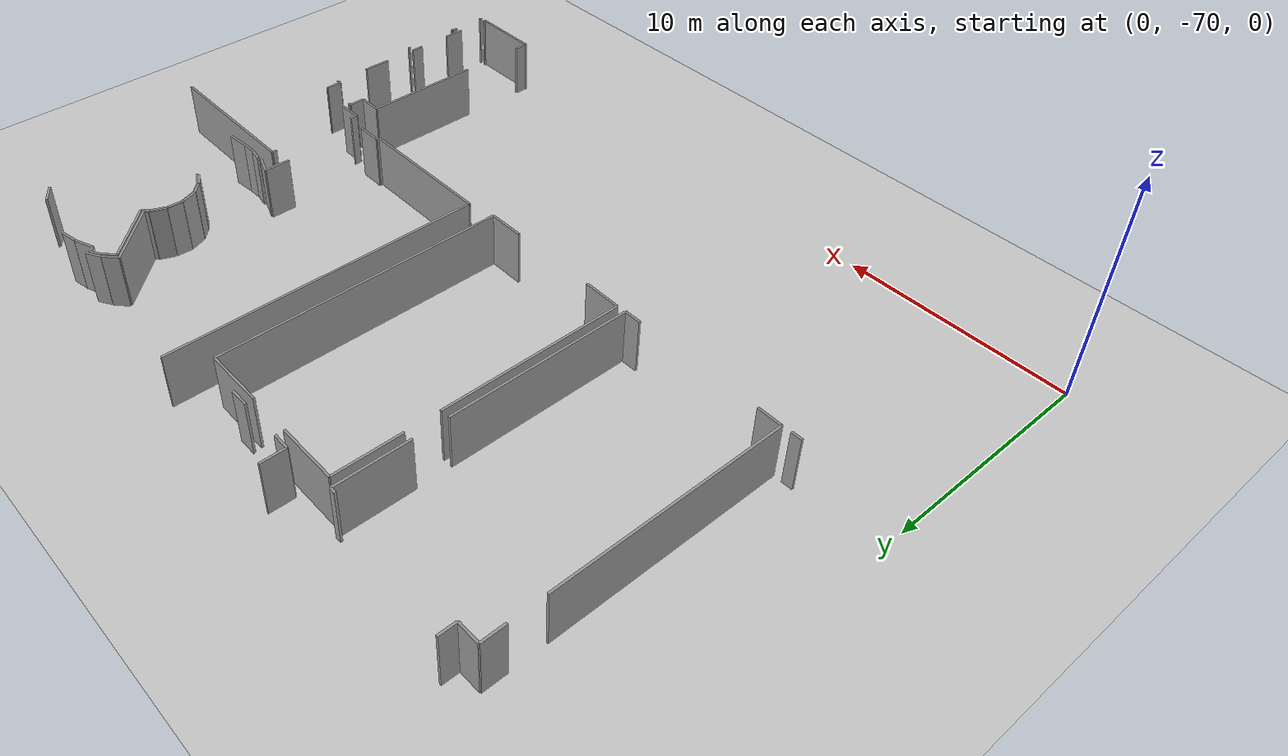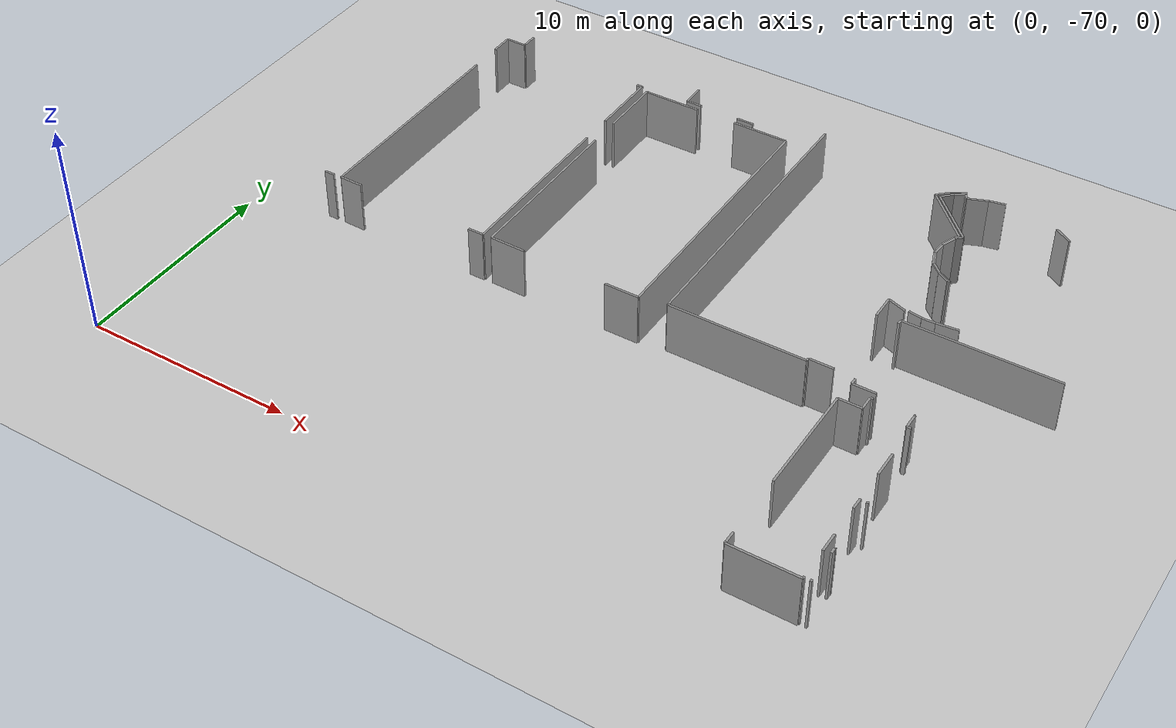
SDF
<sdf version="1.6">
 <world name="default">
  <model name="ground_plane">
   <static>1</static>
   <link name="link">
    <collision name="collision">
     <geometry><plane><normal>0 0 1</normal><size>100 100</size></plane></geometry>
     <surface><friction><ode><mu>100</mu><mu2>50</mu2></ode></friction></surface>
    </collision>
    <visual name="visual">
     <cast_shadows>0</cast_shadows>
     <geometry><plane><normal>0 0 1</normal><size>100 100</size></plane></geometry>
     <material>
      <script><uri>file://media/materials/scripts/gazebo.material</uri><name>Gazebo/Grey</name></script>
     </material>
    </visual>
   </link>
  </model>
  <model name="0510035519_A_40_1_102">
   <static>1</static>
   <link name="Wall_614">
    <collision name="Wall_614_Collision">
     <geometry><box><size>0.830855254797 0.1 2.5</size></box></geometry>
     <pose>0.415427627399 0 1.25 0 0 0</pose>
    </collision>
    <visual name="Wall_614_Visual">
     <pose>0.415427627399 0 1.25 0 0 0</pose>
     <geometry><box><size>0.830855254797 0.1 2.5</size></box></geometry>
     <material>
      <script><uri>file://media/materials/scripts/gazebo.material</uri><name>Gazebo/Grey</name></script>
      <ambient>1 1 1 1</ambient>
     </material>
    </visual>
    <pose>134.57084763 -114.151988817 0 0 0 3.14159265359</pose>
   </link>
   <link name="Wall_615">
    <collision name="Wall_615_Collision">
     <geometry><box><size>0.73935697039 0.1 2.5</size></box></geometry>
     <pose>0.369678485195 0 1.25 0 0 0</pose>
    </collision>
    <visual name="Wall_615_Visual">
     <pose>0.369678485195 0 1.25 0 0 0</pose>
     <geometry><box><size>0.73935697039 0.1 2.5</size></box></geometry>
     <material>
      <script><uri>file://media/materials/scripts/gazebo.material</uri><name>Gazebo/Grey</name></script>
      <ambient>1 1 1 1</ambient>
     </material>
    </visual>
    <pose>131.845469564 -114.151988817 0 0 0 3.14159265359</pose>
   </link>
   <link name="Wall_616">
    <collision name="Wall_616_Collision">
     <geometry><box><size>1.09797941289 0.1 2.5</size></box></geometry>
     <pose>0.548989706443 0 1.25 0 0 0</pose>
    </collision>
    <visual name="Wall_616_Visual">
     <pose>0.548989706443 0 1.25 0 0 0</pose>
     <geometry><box><size>1.09797941289 0.1 2.5</size></box></geometry>
     <material>
      <script><uri>file://media/materials/scripts/gazebo.material</uri><name>Gazebo/Grey</name></script>
      <ambient>1 1 1 1</ambient>
     </material>
    </visual>
    <pose>131.106112594 -114.151988817 0 0 0 1.57079632679</pose>
   </link>
   <link name="Wall_625">
    <collision name="Wall_625_Collision">
     <geometry><box><size>0.483924259753 0.1 2.5</size></box></geometry>
     <pose>0.241962129877 0 1.25 0 0 0</pose>
    </collision>
    <visual name="Wall_625_Visual">
     <pose>0.241962129877 0 1.25 0 0 0</pose>
     <geometry><box><size>0.483924259753 0.1 2.5</size></box></geometry>
     <material>
      <script><uri>file://media/materials/scripts/gazebo.material</uri><name>Gazebo/Grey</name></script>
      <ambient>1 1 1 1</ambient>
     </material>
    </visual>
    <pose>120.720294828 -127.424323294 0 0 0 3.14159265359</pose>
   </link>
   <link name="Wall_630">
    <collision name="Wall_630_Collision">
     <geometry><box><size>10.5062905071 0.1 2.5</size></box></geometry>
     <pose>5.25314525353 0 1.25 0 0 0</pose>
    </collision>
    <visual name="Wall_630_Visual">
     <pose>5.25314525353 0 1.25 0 0 0</pose>
     <geometry><box><size>10.5062905071 0.1 2.5</size></box></geometry>
     <material>
      <script><uri>file://media/materials/scripts/gazebo.material</uri><name>Gazebo/Grey</name></script>
      <ambient>1 1 1 1</ambient>
     </material>
    </visual>
    <pose>121.110433346 -127.396873809 0 0 0 1.57079632679</pose>
   </link>
   <link name="Wall_631">
    <collision name="Wall_631_Collision">
     <geometry><box><size>1.0552802135 0.1 2.5</size></box></geometry>
     <pose>0.527640106748 0 1.25 0 0 0</pose>
    </collision>
    <visual name="Wall_631_Visual">
     <pose>0.527640106748 0 1.25 0 0 0</pose>
     <geometry><box><size>1.0552802135 0.1 2.5</size></box></geometry>
     <material>
      <script><uri>file://media/materials/scripts/gazebo.material</uri><name>Gazebo/Grey</name></script>
      <ambient>1 1 1 1</ambient>
     </material>
    </visual>
    <pose>121.110433346 -115.306900496 0 0 0 1.57079632679</pose>
   </link>
   <link name="Wall_632">
    <collision name="Wall_632_Collision">
     <geometry><box><size>0.980810776465 0.1 2.5</size></box></geometry>
     <pose>0.490405388232 0 1.25 0 0 0</pose>
    </collision>
    <visual name="Wall_632_Visual">
     <pose>0.490405388232 0 1.25 0 0 0</pose>
     <geometry><box><size>0.980810776465 0.1 2.5</size></box></geometry>
     <material>
      <script><uri>file://media/materials/scripts/gazebo.material</uri><name>Gazebo/Grey</name></script>
      <ambient>1 1 1 1</ambient>
     </material>
    </visual>
    <pose>121.110433346 -114.251620282 0 0 0 0.0</pose>
   </link>
   <link name="Wall_633">
    <collision name="Wall_633_Collision">
     <geometry><box><size>0.772652179438 0.1 2.5</size></box></geometry>
     <pose>0.386326089719 0 1.25 0 0 0</pose>
    </collision>
    <visual name="Wall_633_Visual">
     <pose>0.386326089719 0 1.25 0 0 0</pose>
     <geometry><box><size>0.772652179438 0.1 2.5</size></box></geometry>
     <material>
      <script><uri>file://media/materials/scripts/gazebo.material</uri><name>Gazebo/Grey</name></script>
      <ambient>1 1 1 1</ambient>
     </material>
    </visual>
    <pose>122.091244123 -114.251620282 0 0 0 1.57079632679</pose>
   </link>
   <link name="Wall_637">
    <collision name="Wall_637_Collision">
     <geometry><box><size>0.265853348583 0.1 2.5</size></box></geometry>
     <pose>0.132926674292 0 1.25 0 0 0</pose>
    </collision>
    <visual name="Wall_637_Visual">
     <pose>0.132926674292 0 1.25 0 0 0</pose>
     <geometry><box><size>0.265853348583 0.1 2.5</size></box></geometry>
     <material>
      <script><uri>file://media/materials/scripts/gazebo.material</uri><name>Gazebo/Grey</name></script>
      <ambient>1 1 1 1</ambient>
     </material>
    </visual>
    <pose>128.455712289 -114.268140806 0 0 0 0.0</pose>
   </link>
   <link name="Wall_638">
    <collision name="Wall_638_Collision">
     <geometry><box><size>3.2819926293 0.1 2.5</size></box></geometry>
     <pose>1.64099631465 0 1.25 0 0 0</pose>
    </collision>
    <visual name="Wall_638_Visual">
     <pose>1.64099631465 0 1.25 0 0 0</pose>
     <geometry><box><size>3.2819926293 0.1 2.5</size></box></geometry>
     <material>
      <script><uri>file://media/materials/scripts/gazebo.material</uri><name>Gazebo/Grey</name></script>
      <ambient>1 1 1 1</ambient>
     </material>
    </visual>
    <pose>128.721565637 -114.268140806 0 0 0 -1.57079632679</pose>
   </link>
   <link name="Wall_639">
    <collision name="Wall_639_Collision">
     <geometry><box><size>8.33091879527 0.1 2.5</size></box></geometry>
     <pose>4.16545939764 0 1.25 0 0 0</pose>
    </collision>
    <visual name="Wall_639_Visual">
     <pose>4.16545939764 0 1.25 0 0 0</pose>
     <geometry><box><size>8.33091879527 0.1 2.5</size></box></geometry>
     <material>
      <script><uri>file://media/materials/scripts/gazebo.material</uri><name>Gazebo/Grey</name></script>
      <ambient>1 1 1 1</ambient>
     </material>
    </visual>
    <pose>128.721565637 -119.089337908 0 0 0 -1.57079632679</pose>
   </link>
   <link name="Wall_640">
    <collision name="Wall_640_Collision">
     <geometry><box><size>0.754098360656 0.1 2.5</size></box></geometry>
     <pose>0.377049180328 0 1.25 0 0 0</pose>
    </collision>
    <visual name="Wall_640_Visual">
     <pose>0.377049180328 0 1.25 0 0 0</pose>
     <geometry><box><size>0.754098360656 0.1 2.5</size></box></geometry>
     <material>
      <script><uri>file://media/materials/scripts/gazebo.material</uri><name>Gazebo/Grey</name></script>
      <ambient>1 1 1 1</ambient>
     </material>
    </visual>
    <pose>128.721565637 -127.420256704 0 0 0 3.14159265359</pose>
   </link>
   <link name="Wall_641">
    <collision name="Wall_641_Collision">
     <geometry><box><size>1.09289218511 0.1 2.5</size></box></geometry>
     <pose>0.546446092553 0 1.25 0 0 0</pose>
    </collision>
    <visual name="Wall_641_Visual">
     <pose>0.546446092553 0 1.25 0 0 0</pose>
     <geometry><box><size>1.09289218511 0.1 2.5</size></box></geometry>
     <material>
      <script><uri>file://media/materials/scripts/gazebo.material</uri><name>Gazebo/Grey</name></script>
      <ambient>1 1 1 1</ambient>
     </material>
    </visual>
    <pose>122.203075359 -127.420256704 0 0 0 3.12019559397</pose>
   </link>
   <link name="Wall_642">
    <collision name="Wall_642_Collision">
     <geometry><box><size>14.0320243995 0.1 2.5</size></box></geometry>
     <pose>7.01601219977 0 1.25 0 0 0</pose>
    </collision>
    <visual name="Wall_642_Visual">
     <pose>7.01601219977 0 1.25 0 0 0</pose>
     <geometry><box><size>14.0320243995 0.1 2.5</size></box></geometry>
     <material>
      <script><uri>file://media/materials/scripts/gazebo.material</uri><name>Gazebo/Grey</name></script>
      <ambient>1 1 1 1</ambient>
     </material>
    </visual>
    <pose>137.720930233 -127.102300165 0 0 0 1.57079632679</pose>
   </link>
   <link name="Wall_654">
    <collision name="Wall_654_Collision">
     <geometry><box><size>0.693231792023 0.1 2.5</size></box></geometry>
     <pose>0.346615896012 0 1.25 0 0 0</pose>
    </collision>
    <visual name="Wall_654_Visual">
     <pose>0.346615896012 0 1.25 0 0 0</pose>
     <geometry><box><size>0.693231792023 0.1 2.5</size></box></geometry>
     <material>
      <script><uri>file://media/materials/scripts/gazebo.material</uri><name>Gazebo/Grey</name></script>
      <ambient>1 1 1 1</ambient>
     </material>
    </visual>
    <pose>144.995552167 -113.706951328 0 0 0 -2.60343673094</pose>
   </link>
   <link name="Wall_655">
    <collision name="Wall_655_Collision">
     <geometry><box><size>0.736502163317 0.1 2.5</size></box></geometry>
     <pose>0.368251081659 0 1.25 0 0 0</pose>
    </collision>
    <visual name="Wall_655_Visual">
     <pose>0.368251081659 0 1.25 0 0 0</pose>
     <geometry><box><size>0.736502163317 0.1 2.5</size></box></geometry>
     <material>
      <script><uri>file://media/materials/scripts/gazebo.material</uri><name>Gazebo/Grey</name></script>
      <ambient>1 1 1 1</ambient>
     </material>
    </visual>
    <pose>144.400304994 -114.062269666 0 0 0 -2.38792212103</pose>
   </link>
   <link name="Wall_656">
    <collision name="Wall_656_Collision">
     <geometry><box><size>3.01260734579 0.1 2.5</size></box></geometry>
     <pose>1.50630367289 0 1.25 0 0 0</pose>
    </collision>
    <visual name="Wall_656_Visual">
     <pose>1.50630367289 0 1.25 0 0 0</pose>
     <geometry><box><size>3.01260734579 0.1 2.5</size></box></geometry>
     <material>
      <script><uri>file://media/materials/scripts/gazebo.material</uri><name>Gazebo/Grey</name></script>
      <ambient>1 1 1 1</ambient>
     </material>
    </visual>
    <pose>143.863260897 -114.566272716 0 0 0 -0.800133687664</pose>
   </link>
   <link name="Wall_657">
    <collision name="Wall_657_Collision">
     <geometry><box><size>0.205679644979 0.1 2.5</size></box></geometry>
     <pose>0.102839822489 0 1.25 0 0 0</pose>
    </collision>
    <visual name="Wall_657_Visual">
     <pose>0.102839822489 0 1.25 0 0 0</pose>
     <geometry><box><size>0.205679644979 0.1 2.5</size></box></geometry>
     <material>
      <script><uri>file://media/materials/scripts/gazebo.material</uri><name>Gazebo/Grey</name></script>
      <ambient>1 1 1 1</ambient>
     </material>
    </visual>
    <pose>145.961875715 -116.727665523 0 0 0 -2.38415922616</pose>
   </link>
   <link name="Wall_658">
    <collision name="Wall_658_Collision">
     <geometry><box><size>0.73428780835 0.1 2.5</size></box></geometry>
     <pose>0.367143904175 0 1.25 0 0 0</pose>
    </collision>
    <visual name="Wall_658_Visual">
     <pose>0.367143904175 0 1.25 0 0 0</pose>
     <geometry><box><size>0.73428780835 0.1 2.5</size></box></geometry>
     <material>
      <script><uri>file://media/materials/scripts/gazebo.material</uri><name>Gazebo/Grey</name></script>
      <ambient>1 1 1 1</ambient>
     </material>
    </visual>
    <pose>145.812428517 -116.86897954 0 0 0 -1.9535523466</pose>
   </link>
   <link name="Wall_659">
    <collision name="Wall_659_Collision">
     <geometry><box><size>0.698372898451 0.1 2.5</size></box></geometry>
     <pose>0.349186449226 0 1.25 0 0 0</pose>
    </collision>
    <visual name="Wall_659_Visual">
     <pose>0.349186449226 0 1.25 0 0 0</pose>
     <geometry><box><size>0.698372898451 0.1 2.5</size></box></geometry>
     <material>
      <script><uri>file://media/materials/scripts/gazebo.material</uri><name>Gazebo/Grey</name></script>
      <ambient>1 1 1 1</ambient>
     </material>
    </visual>
    <pose>145.538187826 -117.550133435 0 0 0 -1.60646946072</pose>
   </link>
   <link name="Wall_660">
    <collision name="Wall_660_Collision">
     <geometry><box><size>0.759424957771 0.1 2.5</size></box></geometry>
     <pose>0.379712478886 0 1.25 0 0 0</pose>
    </collision>
    <visual name="Wall_660_Visual">
     <pose>0.379712478886 0 1.25 0 0 0</pose>
     <geometry><box><size>0.759424957771 0.1 2.5</size></box></geometry>
     <material>
      <script><uri>file://media/materials/scripts/gazebo.material</uri><name>Gazebo/Grey</name></script>
      <ambient>1 1 1 1</ambient>
     </material>
    </visual>
    <pose>145.513279959 -118.248062016 0 0 0 -1.22491325731</pose>
   </link>
   <link name="Wall_661">
    <collision name="Wall_661_Collision">
     <geometry><box><size>0.664117801132 0.1 2.5</size></box></geometry>
     <pose>0.332058900566 0 1.25 0 0 0</pose>
    </collision>
    <visual name="Wall_661_Visual">
     <pose>0.332058900566 0 1.25 0 0 0</pose>
     <geometry><box><size>0.664117801132 0.1 2.5</size></box></geometry>
     <material>
      <script><uri>file://media/materials/scripts/gazebo.material</uri><name>Gazebo/Grey</name></script>
      <ambient>1 1 1 1</ambient>
     </material>
    </visual>
    <pose>145.770745965 -118.96251112 0 0 0 -0.758874877414</pose>
   </link>
   <link name="Wall_662">
    <collision name="Wall_662_Collision">
     <geometry><box><size>0.591698185727 0.1 2.5</size></box></geometry>
     <pose>0.295849092863 0 1.25 0 0 0</pose>
    </collision>
    <visual name="Wall_662_Visual">
     <pose>0.295849092863 0 1.25 0 0 0</pose>
     <geometry><box><size>0.591698185727 0.1 2.5</size></box></geometry>
     <material>
      <script><uri>file://media/materials/scripts/gazebo.material</uri><name>Gazebo/Grey</name></script>
      <ambient>1 1 1 1</ambient>
     </material>
    </visual>
    <pose>146.25263693 -119.419494218 0 0 0 -0.514191175842</pose>
   </link>
   <link name="Wall_663">
    <collision name="Wall_663_Collision">
     <geometry><box><size>0.90360661251 0.1 2.5</size></box></geometry>
     <pose>0.451803306255 0 1.25 0 0 0</pose>
    </collision>
    <visual name="Wall_663_Visual">
     <pose>0.451803306255 0 1.25 0 0 0</pose>
     <geometry><box><size>0.90360661251 0.1 2.5</size></box></geometry>
     <material>
      <script><uri>file://media/materials/scripts/gazebo.material</uri><name>Gazebo/Grey</name></script>
      <ambient>1 1 1 1</ambient>
     </material>
    </visual>
    <pose>146.071927818 -122.356080823 0 0 0 2.80267449499</pose>
   </link>
   <link name="Wall_664">
    <collision name="Wall_664_Collision">
     <geometry><box><size>1.15669081205 0.1 2.5</size></box></geometry>
     <pose>0.578345406024 0 1.25 0 0 0</pose>
    </collision>
    <visual name="Wall_664_Visual">
     <pose>0.578345406024 0 1.25 0 0 0</pose>
     <geometry><box><size>1.15669081205 0.1 2.5</size></box></geometry>
     <material>
      <script><uri>file://media/materials/scripts/gazebo.material</uri><name>Gazebo/Grey</name></script>
      <ambient>1 1 1 1</ambient>
     </material>
    </visual>
    <pose>145.219722964 -122.055661456 0 0 0 -1.57079632679</pose>
   </link>
   <link name="Wall_665">
    <collision name="Wall_665_Collision">
     <geometry><box><size>1.13483288855 0.1 2.5</size></box></geometry>
     <pose>0.567416444275 0 1.25 0 0 0</pose>
    </collision>
    <visual name="Wall_665_Visual">
     <pose>0.567416444275 0 1.25 0 0 0</pose>
     <geometry><box><size>1.13483288855 0.1 2.5</size></box></geometry>
     <material>
      <script><uri>file://media/materials/scripts/gazebo.material</uri><name>Gazebo/Grey</name></script>
      <ambient>1 1 1 1</ambient>
     </material>
    </visual>
    <pose>145.219722964 -127.034184776 0 0 0 3.14159265359</pose>
   </link>
   <link name="Wall_666">
    <collision name="Wall_666_Collision">
     <geometry><box><size>0.143601474139 0.1 2.5</size></box></geometry>
     <pose>0.0718007370695 0 1.25 0 0 0</pose>
    </collision>
    <visual name="Wall_666_Visual">
     <pose>0.0718007370695 0 1.25 0 0 0</pose>
     <geometry><box><size>0.143601474139 0.1 2.5</size></box></geometry>
     <material>
      <script><uri>file://media/materials/scripts/gazebo.material</uri><name>Gazebo/Grey</name></script>
      <ambient>1 1 1 1</ambient>
     </material>
    </visual>
    <pose>144.084890075 -127.034184776 0 0 0 -1.57079632679</pose>
   </link>
   <link name="Wall_667">
    <collision name="Wall_667_Collision">
     <geometry><box><size>6.36904308044 0.1 2.5</size></box></geometry>
     <pose>3.18452154022 0 1.25 0 0 0</pose>
    </collision>
    <visual name="Wall_667_Visual">
     <pose>3.18452154022 0 1.25 0 0 0</pose>
     <geometry><box><size>6.36904308044 0.1 2.5</size></box></geometry>
     <material>
      <script><uri>file://media/materials/scripts/gazebo.material</uri><name>Gazebo/Grey</name></script>
      <ambient>1 1 1 1</ambient>
     </material>
    </visual>
    <pose>144.084890075 -127.17778625 0 0 0 3.14159265359</pose>
   </link>
   <link name="Wall_668">
    <collision name="Wall_668_Collision">
     <geometry><box><size>0.075657043839 0.1 2.5</size></box></geometry>
     <pose>0.0378285219195 0 1.25 0 0 0</pose>
    </collision>
    <visual name="Wall_668_Visual">
     <pose>0.0378285219195 0 1.25 0 0 0</pose>
     <geometry><box><size>0.075657043839 0.1 2.5</size></box></geometry>
     <material>
      <script><uri>file://media/materials/scripts/gazebo.material</uri><name>Gazebo/Grey</name></script>
      <ambient>1 1 1 1</ambient>
     </material>
    </visual>
    <pose>137.715846995 -127.17778625 0 0 0 1.50355777206</pose>
   </link>
   <link name="Wall_691">
    <collision name="Wall_691_Collision">
     <geometry><box><size>2.92793437855 0.1 2.5</size></box></geometry>
     <pose>1.46396718928 0 1.25 0 0 0</pose>
    </collision>
    <visual name="Wall_691_Visual">
     <pose>1.46396718928 0 1.25 0 0 0</pose>
     <geometry><box><size>2.92793437855 0.1 2.5</size></box></geometry>
     <material>
      <script><uri>file://media/materials/scripts/gazebo.material</uri><name>Gazebo/Grey</name></script>
      <ambient>1 1 1 1</ambient>
     </material>
    </visual>
    <pose>146.126826789 -116.685982971 0 0 0 2.3418308372</pose>
   </link>
   <link name="Wall_692">
    <collision name="Wall_692_Collision">
     <geometry><box><size>0.655086855518 0.1 2.5</size></box></geometry>
     <pose>0.327543427759 0 1.25 0 0 0</pose>
    </collision>
    <visual name="Wall_692_Visual">
     <pose>0.327543427759 0 1.25 0 0 0</pose>
     <geometry><box><size>0.655086855518 0.1 2.5</size></box></geometry>
     <material>
      <script><uri>file://media/materials/scripts/gazebo.material</uri><name>Gazebo/Grey</name></script>
      <ambient>1 1 1 1</ambient>
     </material>
    </visual>
    <pose>144.086415046 -114.586097344 0 0 0 0.780185590581</pose>
   </link>
   <link name="Wall_693">
    <collision name="Wall_693_Collision">
     <geometry><box><size>0.515680217031 0.1 2.5</size></box></geometry>
     <pose>0.257840108516 0 1.25 0 0 0</pose>
    </collision>
    <visual name="Wall_693_Visual">
     <pose>0.257840108516 0 1.25 0 0 0</pose>
     <geometry><box><size>0.515680217031 0.1 2.5</size></box></geometry>
     <material>
      <script><uri>file://media/materials/scripts/gazebo.material</uri><name>Gazebo/Grey</name></script>
      <ambient>1 1 1 1</ambient>
     </material>
    </visual>
    <pose>144.552039649 -114.125301817 0 0 0 0.557240975444</pose>
   </link>
   <link name="Wall_694">
    <collision name="Wall_694_Collision">
     <geometry><box><size>0.285708388754 0.1 2.5</size></box></geometry>
     <pose>0.142854194377 0 1.25 0 0 0</pose>
    </collision>
    <visual name="Wall_694_Visual">
     <pose>0.142854194377 0 1.25 0 0 0</pose>
     <geometry><box><size>0.285708388754 0.1 2.5</size></box></geometry>
     <material>
      <script><uri>file://media/materials/scripts/gazebo.material</uri><name>Gazebo/Grey</name></script>
      <ambient>1 1 1 1</ambient>
     </material>
    </visual>
    <pose>144.989706443 -113.852586097 0 0 0 -0.988715193637</pose>
   </link>
   <link name="Wall_695">
    <collision name="Wall_695_Collision">
     <geometry><box><size>0.941482101887 0.1 2.5</size></box></geometry>
     <pose>0.470741050943 0 1.25 0 0 0</pose>
    </collision>
    <visual name="Wall_695_Visual">
     <pose>0.470741050943 0 1.25 0 0 0</pose>
     <geometry><box><size>0.941482101887 0.1 2.5</size></box></geometry>
     <material>
      <script><uri>file://media/materials/scripts/gazebo.material</uri><name>Gazebo/Grey</name></script>
      <ambient>1 1 1 1</ambient>
     </material>
    </visual>
    <pose>145.146778498 -114.091244123 0 0 0 0.382912628735</pose>
   </link>
   <link name="Wall_696">
    <collision name="Wall_696_Collision">
     <geometry><box><size>0.756305918231 0.1 2.5</size></box></geometry>
     <pose>0.378152959115 0 1.25 0 0 0</pose>
    </collision>
    <visual name="Wall_696_Visual">
     <pose>0.378152959115 0 1.25 0 0 0</pose>
     <geometry><box><size>0.756305918231 0.1 2.5</size></box></geometry>
     <material>
      <script><uri>file://media/materials/scripts/gazebo.material</uri><name>Gazebo/Grey</name></script>
      <ambient>1 1 1 1</ambient>
     </material>
    </visual>
    <pose>146.02007879 -113.739484051 0 0 0 0.200624969305</pose>
   </link>
   <link name="Wall_700">
    <collision name="Wall_700_Collision">
     <geometry><box><size>0.914940835793 0.1 2.5</size></box></geometry>
     <pose>0.457470417897 0 1.25 0 0 0</pose>
    </collision>
    <visual name="Wall_700_Visual">
     <pose>0.457470417897 0 1.25 0 0 0</pose>
     <geometry><box><size>0.914940835793 0.1 2.5</size></box></geometry>
     <material>
      <script><uri>file://media/materials/scripts/gazebo.material</uri><name>Gazebo/Grey</name></script>
      <ambient>1 1 1 1</ambient>
     </material>
    </visual>
    <pose>149.287330029 -114.038378447 0 0 0 -0.568817164038</pose>
   </link>
   <link name="Wall_710">
    <collision name="Wall_710_Collision">
     <geometry><box><size>1.00474918729 0.1 2.5</size></box></geometry>
     <pose>0.502374593646 0 1.25 0 0 0</pose>
    </collision>
    <visual name="Wall_710_Visual">
     <pose>0.502374593646 0 1.25 0 0 0</pose>
     <geometry><box><size>1.00474918729 0.1 2.5</size></box></geometry>
     <material>
      <script><uri>file://media/materials/scripts/gazebo.material</uri><name>Gazebo/Grey</name></script>
      <ambient>1 1 1 1</ambient>
     </material>
    </visual>
    <pose>148.459778879 -122.298386072 0 0 0 -3.04303150398</pose>
   </link>
   <link name="Wall_711">
    <collision name="Wall_711_Collision">
     <geometry><box><size>0.604673971762 0.1 2.5</size></box></geometry>
     <pose>0.302336985881 0 1.25 0 0 0</pose>
    </collision>
    <visual name="Wall_711_Visual">
     <pose>0.302336985881 0 1.25 0 0 0</pose>
     <geometry><box><size>0.604673971762 0.1 2.5</size></box></geometry>
     <material>
      <script><uri>file://media/materials/scripts/gazebo.material</uri><name>Gazebo/Grey</name></script>
      <ambient>1 1 1 1</ambient>
     </material>
    </visual>
    <pose>147.45990596 -122.397255051 0 0 0 -3.11132435646</pose>
   </link>
   <link name="Wall_712">
    <collision name="Wall_712_Collision">
     <geometry><box><size>0.638342174566 0.1 2.5</size></box></geometry>
     <pose>0.319171087283 0 1.25 0 0 0</pose>
    </collision>
    <visual name="Wall_712_Visual">
     <pose>0.319171087283 0 1.25 0 0 0</pose>
     <geometry><box><size>0.638342174566 0.1 2.5</size></box></geometry>
     <material>
      <script><uri>file://media/materials/scripts/gazebo.material</uri><name>Gazebo/Grey</name></script>
      <ambient>1 1 1 1</ambient>
     </material>
    </visual>
    <pose>146.855508959 -122.415554708 0 0 0 2.96387590268</pose>
   </link>
   <link name="Wall_713">
    <collision name="Wall_713_Collision">
     <geometry><box><size>0.711463402576 0.1 2.5</size></box></geometry>
     <pose>0.355731701288 0 1.25 0 0 0</pose>
    </collision>
    <visual name="Wall_713_Visual">
     <pose>0.355731701288 0 1.25 0 0 0</pose>
     <geometry><box><size>0.711463402576 0.1 2.5</size></box></geometry>
     <material>
      <script><uri>file://media/materials/scripts/gazebo.material</uri><name>Gazebo/Grey</name></script>
      <ambient>1 1 1 1</ambient>
     </material>
    </visual>
    <pose>146.869487864 -119.717371966 0 0 0 2.63671482563</pose>
   </link>
   <link name="Wall_714">
    <collision name="Wall_714_Collision">
     <geometry><box><size>0.606780333454 0.1 2.5</size></box></geometry>
     <pose>0.303390166727 0 1.25 0 0 0</pose>
    </collision>
    <visual name="Wall_714_Visual">
     <pose>0.303390166727 0 1.25 0 0 0</pose>
     <geometry><box><size>0.606780333454 0.1 2.5</size></box></geometry>
     <material>
      <script><uri>file://media/materials/scripts/gazebo.material</uri><name>Gazebo/Grey</name></script>
      <ambient>1 1 1 1</ambient>
     </material>
    </visual>
    <pose>146.246791206 -119.373236752 0 0 0 2.36863460672</pose>
   </link>
   <link name="Wall_715">
    <collision name="Wall_715_Collision">
     <geometry><box><size>0.738272120255 0.1 2.5</size></box></geometry>
     <pose>0.369136060127 0 1.25 0 0 0</pose>
    </collision>
    <visual name="Wall_715_Visual">
     <pose>0.369136060127 0 1.25 0 0 0</pose>
     <geometry><box><size>0.738272120255 0.1 2.5</size></box></geometry>
     <material>
      <script><uri>file://media/materials/scripts/gazebo.material</uri><name>Gazebo/Grey</name></script>
      <ambient>1 1 1 1</ambient>
     </material>
    </visual>
    <pose>145.812428517 -118.949548863 0 0 0 1.92042029644</pose>
   </link>
   <link name="Wall_716">
    <collision name="Wall_716_Collision">
     <geometry><box><size>0.650780195392 0.1 2.5</size></box></geometry>
     <pose>0.325390097696 0 1.25 0 0 0</pose>
    </collision>
    <visual name="Wall_716_Visual">
     <pose>0.325390097696 0 1.25 0 0 0</pose>
     <geometry><box><size>0.650780195392 0.1 2.5</size></box></geometry>
     <material>
      <script><uri>file://media/materials/scripts/gazebo.material</uri><name>Gazebo/Grey</name></script>
      <ambient>1 1 1 1</ambient>
     </material>
    </visual>
    <pose>145.559537425 -118.255941034 0 0 0 1.52664989145</pose>
   </link>
   <link name="Wall_717">
    <collision name="Wall_717_Collision">
     <geometry><box><size>0.724300238424 0.1 2.5</size></box></geometry>
     <pose>0.362150119212 0 1.25 0 0 0</pose>
    </collision>
    <visual name="Wall_717_Visual">
     <pose>0.362150119212 0 1.25 0 0 0</pose>
     <geometry><box><size>0.724300238424 0.1 2.5</size></box></geometry>
     <material>
      <script><uri>file://media/materials/scripts/gazebo.material</uri><name>Gazebo/Grey</name></script>
      <ambient>1 1 1 1</ambient>
     </material>
    </visual>
    <pose>145.58825772 -117.605794891 0 0 0 1.18286144043</pose>
   </link>
   <link name="Wall_718">
    <collision name="Wall_718_Collision">
     <geometry><box><size>0.363552991477 0.1 2.5</size></box></geometry>
     <pose>0.181776495738 0 1.25 0 0 0</pose>
    </collision>
    <visual name="Wall_718_Visual">
     <pose>0.181776495738 0 1.25 0 0 0</pose>
     <geometry><box><size>0.363552991477 0.1 2.5</size></box></geometry>
     <material>
      <script><uri>file://media/materials/scripts/gazebo.material</uri><name>Gazebo/Grey</name></script>
      <ambient>1 1 1 1</ambient>
     </material>
    </visual>
    <pose>145.86224425 -116.935315796 0 0 0 0.755733277711</pose>
   </link>
   <link name="Wall_719">
    <collision name="Wall_719_Collision">
     <geometry><box><size>8.33091879527 0.1 2.5</size></box></geometry>
     <pose>4.16545939764 0 1.25 0 0 0</pose>
    </collision>
    <visual name="Wall_719_Visual">
     <pose>4.16545939764 0 1.25 0 0 0</pose>
     <geometry><box><size>8.33091879527 0.1 2.5</size></box></geometry>
     <material>
      <script><uri>file://media/materials/scripts/gazebo.material</uri><name>Gazebo/Grey</name></script>
      <ambient>1 1 1 1</ambient>
     </material>
    </visual>
    <pose>129.136612022 -127.393315542 0 0 0 1.57079632679</pose>
   </link>
   <link name="Wall_720">
    <collision name="Wall_720_Collision">
     <geometry><box><size>3.00622696658 0.1 2.5</size></box></geometry>
     <pose>1.50311348329 0 1.25 0 0 0</pose>
    </collision>
    <visual name="Wall_720_Visual">
     <pose>1.50311348329 0 1.25 0 0 0</pose>
     <geometry><box><size>3.00622696658 0.1 2.5</size></box></geometry>
     <material>
      <script><uri>file://media/materials/scripts/gazebo.material</uri><name>Gazebo/Grey</name></script>
      <ambient>1 1 1 1</ambient>
     </material>
    </visual>
    <pose>129.136612022 -117.519125683 0 0 0 1.57079632679</pose>
   </link>
   <link name="Wall_721">
    <collision name="Wall_721_Collision">
     <geometry><box><size>2.71699072309 0.1 2.5</size></box></geometry>
     <pose>1.35849536155 0 1.25 0 0 0</pose>
    </collision>
    <visual name="Wall_721_Visual">
     <pose>1.35849536155 0 1.25 0 0 0</pose>
     <geometry><box><size>2.71699072309 0.1 2.5</size></box></geometry>
     <material>
      <script><uri>file://media/materials/scripts/gazebo.material</uri><name>Gazebo/Grey</name></script>
      <ambient>1 1 1 1</ambient>
     </material>
    </visual>
    <pose>129.136612022 -114.512898716 0 0 0 0.0</pose>
   </link>
   <link name="Wall_722">
    <collision name="Wall_722_Collision">
     <geometry><box><size>2.66997077138 0.1 2.5</size></box></geometry>
     <pose>1.33498538569 0 1.25 0 0 0</pose>
    </collision>
    <visual name="Wall_722_Visual">
     <pose>1.33498538569 0 1.25 0 0 0</pose>
     <geometry><box><size>2.66997077138 0.1 2.5</size></box></geometry>
     <material>
      <script><uri>file://media/materials/scripts/gazebo.material</uri><name>Gazebo/Grey</name></script>
      <ambient>1 1 1 1</ambient>
     </material>
    </visual>
    <pose>133.790824755 -114.512898716 0 0 0 0.0</pose>
   </link>
   <link name="Wall_723">
    <collision name="Wall_723_Collision">
     <geometry><box><size>12.9058330156 0.1 2.5</size></box></geometry>
     <pose>6.45291650782 0 1.25 0 0 0</pose>
    </collision>
    <visual name="Wall_723_Visual">
     <pose>6.45291650782 0 1.25 0 0 0</pose>
     <geometry><box><size>12.9058330156 0.1 2.5</size></box></geometry>
     <material>
      <script><uri>file://media/materials/scripts/gazebo.material</uri><name>Gazebo/Grey</name></script>
      <ambient>1 1 1 1</ambient>
     </material>
    </visual>
    <pose>136.460795527 -114.512898716 0 0 0 -1.57079632679</pose>
   </link>
   <link name="Wall_724">
    <collision name="Wall_724_Collision">
     <geometry><box><size>1.61519888169 0.1 2.5</size></box></geometry>
     <pose>0.807599440844 0 1.25 0 0 0</pose>
    </collision>
    <visual name="Wall_724_Visual">
     <pose>0.807599440844 0 1.25 0 0 0</pose>
     <geometry><box><size>1.61519888169 0.1 2.5</size></box></geometry>
     <material>
      <script><uri>file://media/materials/scripts/gazebo.material</uri><name>Gazebo/Grey</name></script>
      <ambient>1 1 1 1</ambient>
     </material>
    </visual>
    <pose>136.460795527 -127.418731732 0 0 0 3.14159265359</pose>
   </link>
   <link name="Wall_725">
    <collision name="Wall_725_Collision">
     <geometry><box><size>1.69849999671 0.1 2.5</size></box></geometry>
     <pose>0.849249998356 0 1.25 0 0 0</pose>
    </collision>
    <visual name="Wall_725_Visual">
     <pose>0.849249998356 0 1.25 0 0 0</pose>
     <geometry><box><size>1.69849999671 0.1 2.5</size></box></geometry>
     <material>
      <script><uri>file://media/materials/scripts/gazebo.material</uri><name>Gazebo/Grey</name></script>
      <ambient>1 1 1 1</ambient>
     </material>
    </visual>
    <pose>130.834921845 -127.418731732 0 0 0 3.12662819154</pose>
   </link>
   <link name="Wall_756">
    <collision name="Wall_756_Collision">
     <geometry><box><size>0.543143982717 0.1 2.5</size></box></geometry>
     <pose>0.271571991358 0 1.25 0 0 0</pose>
    </collision>
    <visual name="Wall_756_Visual">
     <pose>0.271571991358 0 1.25 0 0 0</pose>
     <geometry><box><size>0.543143982717 0.1 2.5</size></box></geometry>
     <material>
      <script><uri>file://media/materials/scripts/gazebo.material</uri><name>Gazebo/Grey</name></script>
      <ambient>1 1 1 1</ambient>
     </material>
    </visual>
    <pose>146.10293557 -137.314525353 0 0 0 1.57079632679</pose>
   </link>
   <link name="Wall_757">
    <collision name="Wall_757_Collision">
     <geometry><box><size>5.27767187699 0.1 2.5</size></box></geometry>
     <pose>2.63883593849 0 1.25 0 0 0</pose>
    </collision>
    <visual name="Wall_757_Visual">
     <pose>2.63883593849 0 1.25 0 0 0</pose>
     <geometry><box><size>5.27767187699 0.1 2.5</size></box></geometry>
     <material>
      <script><uri>file://media/materials/scripts/gazebo.material</uri><name>Gazebo/Grey</name></script>
      <ambient>1 1 1 1</ambient>
     </material>
    </visual>
    <pose>146.10293557 -133.751175499 0 0 0 1.57079632679</pose>
   </link>
   <link name="Wall_758">
    <collision name="Wall_758_Collision">
     <geometry><box><size>1.06036345152 0.1 2.5</size></box></geometry>
     <pose>0.530181725759 0 1.25 0 0 0</pose>
    </collision>
    <visual name="Wall_758_Visual">
     <pose>0.530181725759 0 1.25 0 0 0</pose>
     <geometry><box><size>1.06036345152 0.1 2.5</size></box></geometry>
     <material>
      <script><uri>file://media/materials/scripts/gazebo.material</uri><name>Gazebo/Grey</name></script>
      <ambient>1 1 1 1</ambient>
     </material>
    </visual>
    <pose>146.10293557 -128.473503622 0 0 0 0.0</pose>
   </link>
   <link name="Wall_759">
    <collision name="Wall_759_Collision">
     <geometry><box><size>0.70326598043 0.1 2.5</size></box></geometry>
     <pose>0.351632990215 0 1.25 0 0 0</pose>
    </collision>
    <visual name="Wall_759_Visual">
     <pose>0.351632990215 0 1.25 0 0 0</pose>
     <geometry><box><size>0.70326598043 0.1 2.5</size></box></geometry>
     <material>
      <script><uri>file://media/materials/scripts/gazebo.material</uri><name>Gazebo/Grey</name></script>
      <ambient>1 1 1 1</ambient>
     </material>
    </visual>
    <pose>147.163299021 -128.473503622 0 0 0 1.57079632679</pose>
   </link>
   <link name="Wall_760">
    <collision name="Wall_760_Collision">
     <geometry><box><size>0.131910026687 0.1 2.5</size></box></geometry>
     <pose>0.0659550133435 0 1.25 0 0 0</pose>
    </collision>
    <visual name="Wall_760_Visual">
     <pose>0.0659550133435 0 1.25 0 0 0</pose>
     <geometry><box><size>0.131910026687 0.1 2.5</size></box></geometry>
     <material>
      <script><uri>file://media/materials/scripts/gazebo.material</uri><name>Gazebo/Grey</name></script>
      <ambient>1 1 1 1</ambient>
     </material>
    </visual>
    <pose>147.163299021 -127.770237641 0 0 0 0.0</pose>
   </link>
   <link name="Wall_761">
    <collision name="Wall_761_Collision">
     <geometry><box><size>0.0498157326217 0.1 2.5</size></box></geometry>
     <pose>0.0249078663108 0 1.25 0 0 0</pose>
    </collision>
    <visual name="Wall_761_Visual">
     <pose>0.0249078663108 0 1.25 0 0 0</pose>
     <geometry><box><size>0.0498157326217 0.1 2.5</size></box></geometry>
     <material>
      <script><uri>file://media/materials/scripts/gazebo.material</uri><name>Gazebo/Grey</name></script>
      <ambient>1 1 1 1</ambient>
     </material>
    </visual>
    <pose>149.002922862 -127.770237641 0 0 0 0.0</pose>
   </link>
   <link name="Wall_762">
    <collision name="Wall_762_Collision">
     <geometry><box><size>0.713940780277 0.1 2.5</size></box></geometry>
     <pose>0.356970390139 0 1.25 0 0 0</pose>
    </collision>
    <visual name="Wall_762_Visual">
     <pose>0.356970390139 0 1.25 0 0 0</pose>
     <geometry><box><size>0.713940780277 0.1 2.5</size></box></geometry>
     <material>
      <script><uri>file://media/materials/scripts/gazebo.material</uri><name>Gazebo/Grey</name></script>
      <ambient>1 1 1 1</ambient>
     </material>
    </visual>
    <pose>149.052738594 -127.770237641 0 0 0 -1.57079632679</pose>
   </link>
   <link name="Wall_763">
    <collision name="Wall_763_Collision">
     <geometry><box><size>0.182742406913 0.1 2.5</size></box></geometry>
     <pose>0.0913712034566 0 1.25 0 0 0</pose>
    </collision>
    <visual name="Wall_763_Visual">
     <pose>0.0913712034566 0 1.25 0 0 0</pose>
     <geometry><box><size>0.182742406913 0.1 2.5</size></box></geometry>
     <material>
      <script><uri>file://media/materials/scripts/gazebo.material</uri><name>Gazebo/Grey</name></script>
      <ambient>1 1 1 1</ambient>
     </material>
    </visual>
    <pose>149.052738594 -128.484178422 0 0 0 0.0</pose>
   </link>
   <link name="Wall_764">
    <collision name="Wall_764_Collision">
     <geometry><box><size>1.23751429661 0.1 2.5</size></box></geometry>
     <pose>0.618757148303 0 1.25 0 0 0</pose>
    </collision>
    <visual name="Wall_764_Visual">
     <pose>0.618757148303 0 1.25 0 0 0</pose>
     <geometry><box><size>1.23751429661 0.1 2.5</size></box></geometry>
     <material>
      <script><uri>file://media/materials/scripts/gazebo.material</uri><name>Gazebo/Grey</name></script>
      <ambient>1 1 1 1</ambient>
     </material>
    </visual>
    <pose>149.235481001 -130.105477189 0 0 0 -1.57079632679</pose>
   </link>
   <link name="Wall_765">
    <collision name="Wall_765_Collision">
     <geometry><box><size>0.556360401576 0.1 2.5</size></box></geometry>
     <pose>0.278180200788 0 1.25 0 0 0</pose>
    </collision>
    <visual name="Wall_765_Visual">
     <pose>0.278180200788 0 1.25 0 0 0</pose>
     <geometry><box><size>0.556360401576 0.1 2.5</size></box></geometry>
     <material>
      <script><uri>file://media/materials/scripts/gazebo.material</uri><name>Gazebo/Grey</name></script>
      <ambient>1 1 1 1</ambient>
     </material>
    </visual>
    <pose>149.235481001 -132.850171559 0 0 0 -1.57079632679</pose>
   </link>
   <link name="Wall_766">
    <collision name="Wall_766_Collision">
     <geometry><box><size>0.933028339052 0.1 2.5</size></box></geometry>
     <pose>0.466514169526 0 1.25 0 0 0</pose>
    </collision>
    <visual name="Wall_766_Visual">
     <pose>0.466514169526 0 1.25 0 0 0</pose>
     <geometry><box><size>0.933028339052 0.1 2.5</size></box></geometry>
     <material>
      <script><uri>file://media/materials/scripts/gazebo.material</uri><name>Gazebo/Grey</name></script>
      <ambient>1 1 1 1</ambient>
     </material>
    </visual>
    <pose>149.235481001 -134.912695387 0 0 0 -1.57079632679</pose>
   </link>
   <link name="Wall_767">
    <collision name="Wall_767_Collision">
     <geometry><box><size>0.111068750794 0.1 2.5</size></box></geometry>
     <pose>0.0555343753971 0 1.25 0 0 0</pose>
    </collision>
    <visual name="Wall_767_Visual">
     <pose>0.0555343753971 0 1.25 0 0 0</pose>
     <geometry><box><size>0.111068750794 0.1 2.5</size></box></geometry>
     <material>
      <script><uri>file://media/materials/scripts/gazebo.material</uri><name>Gazebo/Grey</name></script>
      <ambient>1 1 1 1</ambient>
     </material>
    </visual>
    <pose>149.235481001 -137.288346677 0 0 0 -1.57079632679</pose>
   </link>
   <link name="Wall_768">
    <collision name="Wall_768_Collision">
     <geometry><box><size>3.13381624095 0.1 2.5</size></box></geometry>
     <pose>1.56690812047 0 1.25 0 0 0</pose>
    </collision>
    <visual name="Wall_768_Visual">
     <pose>1.56690812047 0 1.25 0 0 0</pose>
     <geometry><box><size>3.13381624095 0.1 2.5</size></box></geometry>
     <material>
      <script><uri>file://media/materials/scripts/gazebo.material</uri><name>Gazebo/Grey</name></script>
      <ambient>1 1 1 1</ambient>
     </material>
    </visual>
    <pose>149.235481001 -137.399415428 0 0 0 3.14159265359</pose>
   </link>
   <link name="Wall_769">
    <collision name="Wall_769_Collision">
     <geometry><box><size>0.0848995864921 0.1 2.5</size></box></geometry>
     <pose>0.042449793246 0 1.25 0 0 0</pose>
    </collision>
    <visual name="Wall_769_Visual">
     <pose>0.042449793246 0 1.25 0 0 0</pose>
     <geometry><box><size>0.0848995864921 0.1 2.5</size></box></geometry>
     <material>
      <script><uri>file://media/materials/scripts/gazebo.material</uri><name>Gazebo/Grey</name></script>
      <ambient>1 1 1 1</ambient>
     </material>
    </visual>
    <pose>146.10166476 -137.399415428 0 0 0 1.55582738504</pose>
   </link>
   <link name="Wall_776">
    <collision name="Wall_776_Collision">
     <geometry><box><size>0.100393950947 0.1 2.5</size></box></geometry>
     <pose>0.0501969754734 0 1.25 0 0 0</pose>
    </collision>
    <visual name="Wall_776_Visual">
     <pose>0.0501969754734 0 1.25 0 0 0</pose>
     <geometry><box><size>0.100393950947 0.1 2.5</size></box></geometry>
     <material>
      <script><uri>file://media/materials/scripts/gazebo.material</uri><name>Gazebo/Grey</name></script>
      <ambient>1 1 1 1</ambient>
     </material>
    </visual>
    <pose>149.544541873 -132.926165968 0 0 0 1.57079632679</pose>
   </link>
   <link name="Wall_788">
    <collision name="Wall_788_Collision">
     <geometry><box><size>0.108272969882 0.1 2.5</size></box></geometry>
     <pose>0.0541364849409 0 1.25 0 0 0</pose>
    </collision>
    <visual name="Wall_788_Visual">
     <pose>0.0541364849409 0 1.25 0 0 0</pose>
     <geometry><box><size>0.108272969882 0.1 2.5</size></box></geometry>
     <material>
      <script><uri>file://media/materials/scripts/gazebo.material</uri><name>Gazebo/Grey</name></script>
      <ambient>1 1 1 1</ambient>
     </material>
    </visual>
    <pose>149.538187826 -137.388232304 0 0 0 1.57079632679</pose>
   </link>
   <link name="Wall_789">
    <collision name="Wall_789_Collision">
     <geometry><box><size>0.257974329648 0.1 2.5</size></box></geometry>
     <pose>0.128987164824 0 1.25 0 0 0</pose>
    </collision>
    <visual name="Wall_789_Visual">
     <pose>0.128987164824 0 1.25 0 0 0</pose>
     <geometry><box><size>0.257974329648 0.1 2.5</size></box></geometry>
     <material>
      <script><uri>file://media/materials/scripts/gazebo.material</uri><name>Gazebo/Grey</name></script>
      <ambient>1 1 1 1</ambient>
     </material>
    </visual>
    <pose>149.538187826 -135.796162155 0 0 0 1.57079632679</pose>
   </link>
   <link name="Wall_790">
    <collision name="Wall_790_Collision">
     <geometry><box><size>0.0610015037338 0.1 2.5</size></box></geometry>
     <pose>0.0305007518669 0 1.25 0 0 0</pose>
    </collision>
    <visual name="Wall_790_Visual">
     <pose>0.0305007518669 0 1.25 0 0 0</pose>
     <geometry><box><size>0.0610015037338 0.1 2.5</size></box></geometry>
     <material>
      <script><uri>file://media/materials/scripts/gazebo.material</uri><name>Gazebo/Grey</name></script>
      <ambient>1 1 1 1</ambient>
     </material>
    </visual>
    <pose>149.538187826 -135.538187826 0 0 0 0.0917915351521</pose>
   </link>
   <link name="Wall_884">
    <collision name="Wall_884_Collision">
     <geometry><box><size>7.00495615707 0.1 2.5</size></box></geometry>
     <pose>3.50247807854 0 1.25 0 0 0</pose>
    </collision>
    <visual name="Wall_884_Visual">
     <pose>3.50247807854 0 1.25 0 0 0</pose>
     <geometry><box><size>7.00495615707 0.1 2.5</size></box></geometry>
     <material>
      <script><uri>file://media/materials/scripts/gazebo.material</uri><name>Gazebo/Grey</name></script>
      <ambient>1 1 1 1</ambient>
     </material>
    </visual>
    <pose>146.233574787 -123.007243614 0 0 0 0.0</pose>
   </link>
   <link name="Wall_896">
    <collision name="Wall_896_Collision">
     <geometry><box><size>1.07281738467 0.1 2.5</size></box></geometry>
     <pose>0.536408692337 0 1.25 0 0 0</pose>
    </collision>
    <visual name="Wall_896_Visual">
     <pose>0.536408692337 0 1.25 0 0 0</pose>
     <geometry><box><size>1.07281738467 0.1 2.5</size></box></geometry>
     <material>
      <script><uri>file://media/materials/scripts/gazebo.material</uri><name>Gazebo/Grey</name></script>
      <ambient>1 1 1 1</ambient>
     </material>
    </visual>
    <pose>147.268267887 -127.431693989 0 0 0 3.14159265359</pose>
   </link>
   <link name="Wall_897">
    <collision name="Wall_897_Collision">
     <geometry><box><size>0.315923243106 0.1 2.5</size></box></geometry>
     <pose>0.157961621553 0 1.25 0 0 0</pose>
    </collision>
    <visual name="Wall_897_Visual">
     <pose>0.157961621553 0 1.25 0 0 0</pose>
     <geometry><box><size>0.315923243106 0.1 2.5</size></box></geometry>
     <material>
      <script><uri>file://media/materials/scripts/gazebo.material</uri><name>Gazebo/Grey</name></script>
      <ambient>1 1 1 1</ambient>
     </material>
    </visual>
    <pose>146.195450502 -127.431693989 0 0 0 1.57079632679</pose>
   </link>
   <link name="Wall_898">
    <collision name="Wall_898_Collision">
     <geometry><box><size>0.201042063795 0.1 2.5</size></box></geometry>
     <pose>0.100521031897 0 1.25 0 0 0</pose>
    </collision>
    <visual name="Wall_898_Visual">
     <pose>0.100521031897 0 1.25 0 0 0</pose>
     <geometry><box><size>0.201042063795 0.1 2.5</size></box></geometry>
     <material>
      <script><uri>file://media/materials/scripts/gazebo.material</uri><name>Gazebo/Grey</name></script>
      <ambient>1 1 1 1</ambient>
     </material>
    </visual>
    <pose>146.195450502 -123.20726903 0 0 0 1.57079632679</pose>
   </link>
   <link name="Wall_899">
    <collision name="Wall_899_Collision">
     <geometry><box><size>0.0381378380621 0.1 2.5</size></box></geometry>
     <pose>0.019068919031 0 1.25 0 0 0</pose>
    </collision>
    <visual name="Wall_899_Visual">
     <pose>0.019068919031 0 1.25 0 0 0</pose>
     <geometry><box><size>0.0381378380621 0.1 2.5</size></box></geometry>
     <material>
      <script><uri>file://media/materials/scripts/gazebo.material</uri><name>Gazebo/Grey</name></script>
      <ambient>1 1 1 1</ambient>
     </material>
    </visual>
    <pose>146.195450502 -123.006226967 0 0 0 -0.0266603483747</pose>
   </link>
   <pose>-116.6 68.721527513 0 0 0 0</pose>
  </model>
 </world>
</sdf>
